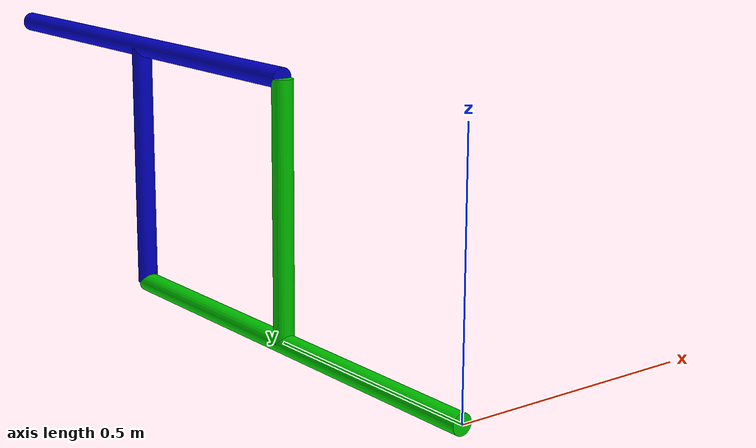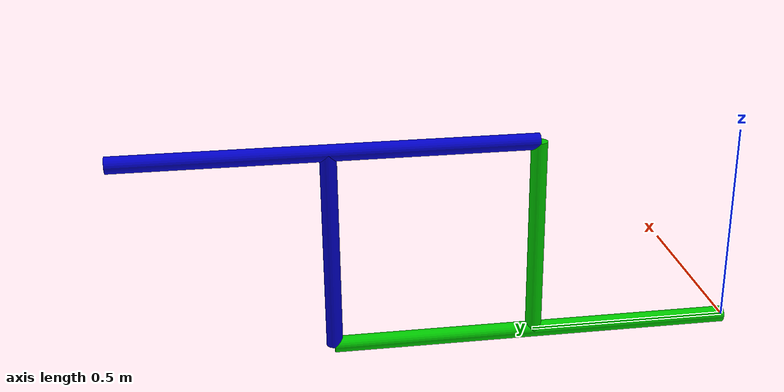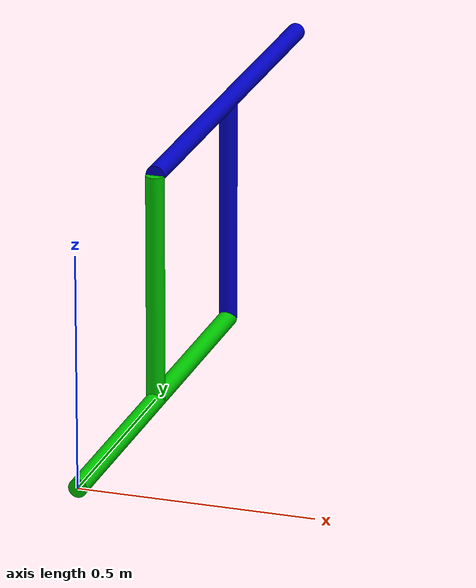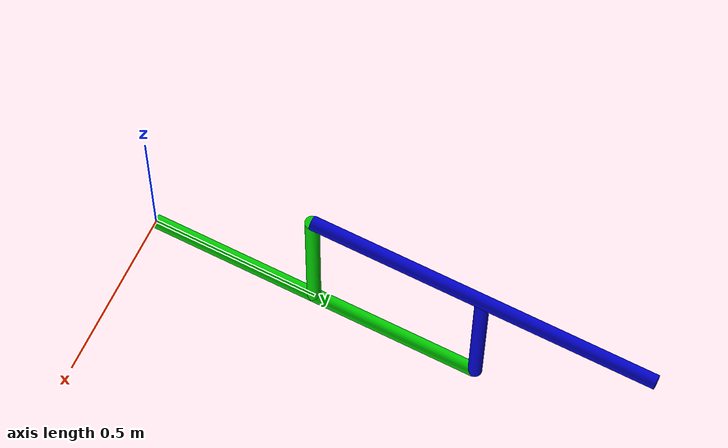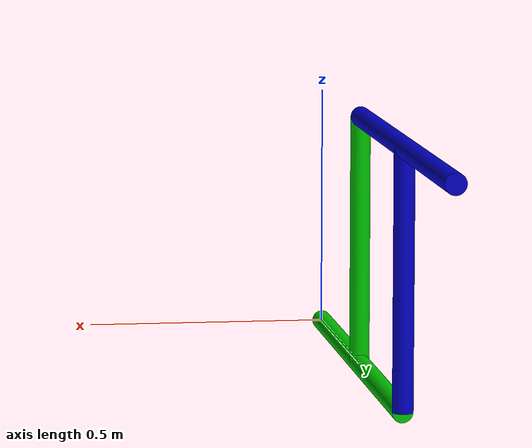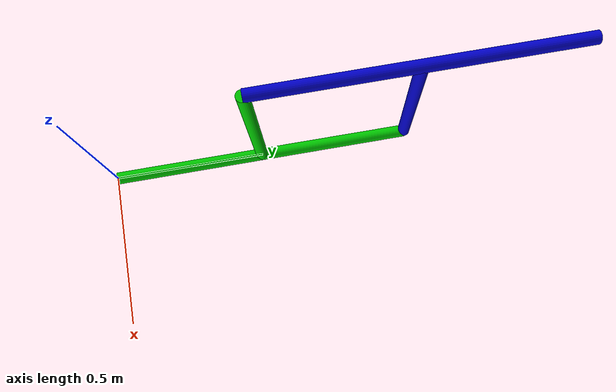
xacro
<?xml version="1.0" ?>
<robot name="vecloc" xmlns:xacro="http://www.ros.org/wiki/xacro">

  <xacro:property name="length1" value="1.0"/>
  <xacro:property name="length2" value="0.5"/>

  <!-- Used for fixing robot to world -->
  <link name="world"/>

  <joint name="base_rot" type="revolute">
    <parent link="world"/>
    <child link="base_link"/>
    <axis xyz="0 1 0" />
    <limit lower="-1.57" upper="1.57" effort="0.5293" velocity="6.159937255" />
  </joint>

  <link name="base_link">
    <visual>
      <origin xyz="0 ${length1/2} 0" rpy="1.57 0 0" />
      <geometry>
        <cylinder radius="0.02" length="${length1}" />
      </geometry>
      <material name="green">
        <color rgba="0 .8 0 1" />
      </material>
    </visual>
  </link>

  <joint name="joint0" type="revolute">
    <parent link="base_link"/>
    <child link="link1"/>
    <origin xyz="0 ${length1/2} 0" rpy="0 0 0" />
    <axis xyz="1 0 0" />
    <limit lower="-1.57" upper="1.57" effort="0.5293" velocity="6.159937255" />
  </joint>

  <link name="link1">
    <visual>
      <origin xyz="0 0 ${length2/2}" rpy="0 0 0" />
      <geometry>
        <cylinder radius="0.02" length="${length2}" />
      </geometry>
      <material name="green">
        <color rgba="0 .8 0 1" />
      </material>
    </visual>
  </link>

  <joint name="joint1" type="revolute">
    <parent link="base_link"/>
    <child link="link2"/>
    <origin xyz="0 ${length1} 0" rpy="0 0 0" />
    <axis xyz="1 0 0" />
    <limit lower="-1.57" upper="1.57" effort="0.5293" velocity="6.159937255" />
    <mimic joint="joint0" multiplier="1" offset="0" />
  </joint>

  <link name="link2">
    <visual>
      <origin xyz="0 0 ${length2/2}" rpy="0 0 0" />
      <geometry>
        <cylinder radius="0.02" length="${length2}" />
      </geometry>
      <material name="blue">
        <color rgba="0 0 .8 1" />
      </material>
    </visual>
  </link>

  <joint name="joint2" type="revolute">
    <parent link="link1"/>
    <child link="link3"/>
    <origin xyz="0 0 ${length2}" rpy="0 0 0" />
    <axis xyz="1 0 0" />
    <limit lower="-1.57" upper="1.57" effort="0.5293" velocity="6.159937255" />
    <mimic joint="joint0" multiplier="-1" offset="0" />
  </joint>

  <link name="link3">
    <visual>
      <origin xyz="0 ${length1/2} 0" rpy="1.57 0 0" />
      <geometry>
        <cylinder radius="0.02" length="${length1}" />
      </geometry>
      <material name="blue">
        <color rgba="0 0 .8 1" />
      </material>
    </visual>
  </link>

</robot>
